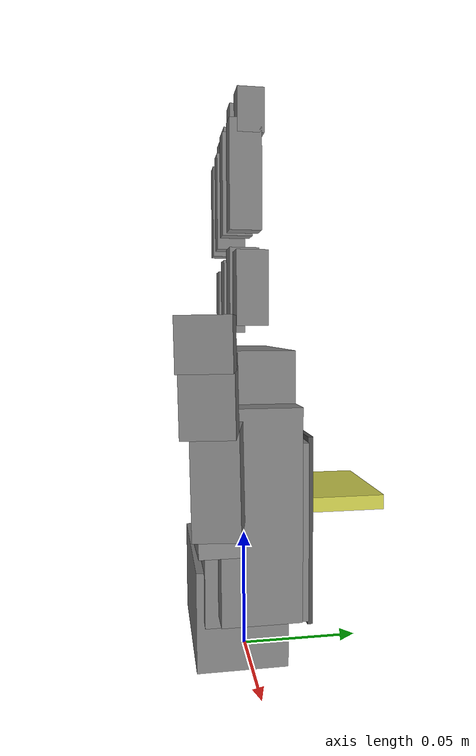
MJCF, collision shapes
<mujoco model="v2_scene_grasp_palmup">
  <!-- ================================================================
       V2 掌心朝上场景 (Palm Up)
       手指朝上(+Z)，掌心朝 +Y，方块放在掌心上方
       ================================================================ -->
  <size nconmax="80"/>
  <include file="right_hand_v2_palmup.xml"/>
  <include file="small_cube.xml"/>

  <statistic center="0 0.02 0.085" extent="0.4" meansize="0.01"/>

  <visual>
    <headlight diffuse=".8 .8 .8" ambient=".2 .2 .2" specular="1 1 1"/>
    <rgba force="1 0 0 1"/>
    <global azimuth="120" elevation="-20"/>
  </visual>

  <asset>
    <texture type="skybox" builtin="gradient" rgb1="1 1 1" rgb2="1 1 1" width="800" height="800"/>
    <texture type="2d" name="groundplane" builtin="checker" mark="edge"
             rgb1="1 1 1" rgb2="1 1 1" markrgb="0 0 0" width="300" height="300"/>
    <material name="groundplane" texture="groundplane" texuniform="true" texrepeat="5 5" reflectance="0"/>
  </asset>

  <worldbody>
    <camera name="side" pos="0.0 -0.5 0.2" xyaxes="1 0 0 0 0.5 0.8"/>
    <camera name="palm" pos="0.0 0.40 0.10" xyaxes="-1 0 0 0 0 1"/>
    <geom name="floor" pos="0 0 -0.25" size="0 0 0.01" type="plane"
          material="groundplane" contype="2" conaffinity="2"/>
    <!-- 支撑台: mocap body -->
    <body name="cube_support" mocap="true" pos="0 0.030 0.067">
      <geom name="cube_support_geom" type="box" size="0.025 0.025 0.003"
            rgba="0.8 0.8 0.3 0.3" contype="4" conaffinity="5"/>
    </body>
  </worldbody>

  <sensor>
    <framepos name="cube_position" objtype="body" objname="cube"/>
    <framequat name="cube_orientation" objtype="body" objname="cube"/>
    <framelinvel name="cube_linvel" objtype="body" objname="cube"/>
    <frameangvel name="cube_angvel" objtype="body" objname="cube"/>
    <framepos name="palm_position" objtype="site" objname="grasp_site"/>
    <framepos name="th_tip_position" objtype="site" objname="th_tip" reftype="site" refname="grasp_site"/>
    <framepos name="if_tip_position" objtype="site" objname="if_tip" reftype="site" refname="grasp_site"/>
    <framepos name="mf_tip_position" objtype="site" objname="mf_tip" reftype="site" refname="grasp_site"/>
    <framepos name="rf_tip_position" objtype="site" objname="rf_tip" reftype="site" refname="grasp_site"/>
    <framepos name="pf_tip_position" objtype="site" objname="pf_tip" reftype="site" refname="grasp_site"/>
  </sensor>

  <!-- keyframe: palmup 姿态
       grasp_site 世界坐标 ≈ (0, 0.020, 0.085)
       cube 放在掌上: (0, 0.030, 0.085)
       support: (0, 0.030, 0.067) -->
  <keyframe>
    <key name="home" qpos="0 0 0 0 0 0 0 0 0 0 0
    0.0 0.030 0.085 1 0 0 0" ctrl="
    0.0
    0.0
    0.0
    0.0
    0.0
    0.0" mpos="0 0.030 0.067" mquat="1 0 0 0"/>
  </keyframe>
</mujoco>

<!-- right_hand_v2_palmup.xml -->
<mujoco model="Lingxi_Hand_V2_Right_PalmUp">
  <compiler angle="radian" meshdir="/home/ll/SRTP/Aero-Hand/handinformation/URDF/右/qbr/meshes/"/>

  <option timestep="0.01" integrator="Euler" iterations="8" ls_iterations="10">
    <flag eulerdamp="disable"/>
  </option>

  <custom>
    <numeric data="80" name="max_contact_points"/>
    <numeric data="50" name="max_geom_pairs"/>
  </custom>

  <asset>
    <material name="black" rgba="0.2 0.2 0.2 1"/>
    <material name="gray" rgba="0.5 0.5 0.5 1"/>
    <material name="white" rgba="0.529 0.549 0.549 1"/>
    <material name="rubber" rgba="0.3 0.3 0.3 1"/>

    <mesh name="v2_palm" file="base_link.STL"/>
    <mesh name="v2_thumb_base" file="link1.STL"/>
    <mesh name="v2_thumb_mid" file="link2.STL"/>
    <mesh name="v2_thumb_tip" file="link3.STL"/>
    <mesh name="v2_index_proximal" file="link4.STL"/>
    <mesh name="v2_index_distal" file="link5.STL"/>
    <mesh name="v2_middle_proximal" file="link6.STL"/>
    <mesh name="v2_middle_distal" file="link7.STL"/>
    <mesh name="v2_ring_proximal" file="link8.STL"/>
    <mesh name="v2_ring_distal" file="link9.STL"/>
    <mesh name="v2_pinky_proximal" file="link10.STL"/>
    <mesh name="v2_pinky_distal" file="link11.STL"/>
  </asset>

  <default>
    <default class="v2_hand">
      <geom group="3" friction="1.5" solref="0.02 1.5" solimp="0.9 0.99 0.001"/>
      <!-- 默认 site 隐藏到 group 4 -->
      <site group="4"/>
      <default class="visual">
        <geom group="2" type="mesh" contype="0" conaffinity="0" density="0" material="white"/>
      </default>
      <joint damping="0.02" armature="0.001559127" frictionloss="0.02"/>
      <position kp="3.0"/>
      <default class="mcp">
        <joint range="0 1.3963" damping="0.1"/>
        <position ctrlrange="0 1.40"/>
      </default>
      <default class="pip">
        <joint range="0 1.2915" damping="0.05"/>
      </default>
      <default class="thumb_cmc">
        <joint range="0 1.3788" damping="0.1"/>
        <position ctrlrange="0 1.38"/>
      </default>
      <default class="thumb_flex">
        <joint range="0 0.5236" damping="0.05"/>
      </default>
      <default class="thumb_mcp">
        <joint range="0 0.7854" damping="0.05"/>
        <position ctrlrange="0 0.79"/>
      </default>
    </default>
  </default>

  <contact>
    <exclude body1="palm" body2="right_index_proximal"/>
    <exclude body1="palm" body2="right_middle_proximal"/>
    <exclude body1="palm" body2="right_ring_proximal"/>
    <exclude body1="palm" body2="right_pinky_proximal"/>
    <exclude body1="palm" body2="right_thumb_base"/>
    <exclude body1="v2_mount" body2="right_index_proximal"/>
    <exclude body1="v2_mount" body2="right_middle_proximal"/>
    <exclude body1="v2_mount" body2="right_ring_proximal"/>
    <exclude body1="v2_mount" body2="right_pinky_proximal"/>
    <exclude body1="v2_mount" body2="right_thumb_base"/>
    <exclude body1="right_index_proximal" body2="right_index_distal"/>
    <exclude body1="right_middle_proximal" body2="right_middle_distal"/>
    <exclude body1="right_ring_proximal" body2="right_ring_distal"/>
    <exclude body1="right_pinky_proximal" body2="right_pinky_distal"/>
    <exclude body1="right_thumb_base" body2="right_thumb_mid"/>
    <exclude body1="right_thumb_mid" body2="right_thumb_tip"/>
  </contact>

  <worldbody>
    <!-- Palmup 挂载: euler="1.5708 0 0" = Rx(90°)
         URDF Y(手指)→世界 Z, URDF X(侧向)→世界 X, URDF Z(掌深)→世界 -Y -->
    <body name="v2_mount" pos="0 0 0" euler="1.5708 0 0" childclass="v2_hand">
      <body name="palm" pos="0 0 0">
        <geom type="mesh" mesh="v2_palm" class="visual"/>
        <geom name="palm_col_main" type="box" size="0.040 0.035 0.020" pos="0 0.060 0"/>
        <geom name="palm_col_top" type="box" size="0.038 0.015 0.015" pos="0 0.115 0"/>
        <geom name="palm_col_bot" type="box" size="0.035 0.020 0.018" pos="0 0.025 0.005"/>
        <geom name="palm_col_left" type="box" size="0.010 0.040 0.015" pos="0.042 0.070 0"/>
        <geom name="palm_col_right" type="box" size="0.010 0.040 0.015" pos="-0.042 0.070 0"/>
        <geom name="palm_rubber" type="box" size="0.038 0.037 0.001" pos="0 0.060 -0.021"
              friction="2.0 0.05 0.0002" material="rubber"/>
        <site name="grasp_site" pos="0 0.085 -0.020" group="4"/>

        <!-- INDEX -->
        <body name="right_index_proximal" pos="0.034276 0.1374 0.001">
          <inertial pos="-0.003657 0.0162 0.000274" mass="0.0686" diaginertia="7.49e-06 7.33e-06 2.82e-06"/>
          <joint name="right_index_mcp" axis="1 0 0" class="mcp"/>
          <geom type="mesh" mesh="v2_index_proximal" class="visual"/>
          <geom name="if_prox_col" type="box" size="0.006 0.014 0.006" pos="-0.004 0.016 0"/>
          <body name="right_index_distal" pos="0.00084336 0.031988 -0.0026473">
            <inertial pos="-0.00450 0.0246 0.00927" mass="0.0755" diaginertia="1.58e-05 1.57e-05 2.47e-06"/>
            <joint name="right_index_pip" axis="1 0 0" class="pip"/>
            <geom type="mesh" mesh="v2_index_distal" class="visual"/>
            <geom name="if_dist_col" type="box" size="0.005 0.020 0.006" pos="-0.004 0.025 0.005"/>
            <geom name="if_tip_col" type="box" size="0.005 0.008 0.005" pos="-0.004 0.048 0.003"/>
            <site name="if_tip" pos="-0.004 0.052 0.005" group="4"/>
            <site name="if_tip_t00" pos="-0.007 0.042 0.005" size="0.003"/>
            <site name="if_tip_t01" pos="-0.005 0.042 0.005" size="0.003"/>
            <site name="if_tip_t02" pos="-0.003 0.042 0.005" size="0.003"/>
            <site name="if_tip_t03" pos="-0.001 0.042 0.005" size="0.003"/>
            <site name="if_tip_t04" pos="-0.007 0.045 0.005" size="0.003"/>
            <site name="if_tip_t05" pos="-0.005 0.045 0.005" size="0.003"/>
            <site name="if_tip_t06" pos="-0.003 0.045 0.005" size="0.003"/>
            <site name="if_tip_t07" pos="-0.001 0.045 0.005" size="0.003"/>
            <site name="if_tip_t08" pos="-0.007 0.048 0.005" size="0.003"/>
            <site name="if_tip_t09" pos="-0.005 0.048 0.005" size="0.003"/>
            <site name="if_tip_t10" pos="-0.003 0.048 0.005" size="0.003"/>
            <site name="if_tip_t11" pos="-0.001 0.048 0.005" size="0.003"/>
            <site name="if_tip_t12" pos="-0.007 0.051 0.005" size="0.003"/>
            <site name="if_tip_t13" pos="-0.005 0.051 0.005" size="0.003"/>
            <site name="if_tip_t14" pos="-0.003 0.051 0.005" size="0.003"/>
            <site name="if_tip_t15" pos="-0.001 0.051 0.005" size="0.003"/>
          </body>
        </body>

        <!-- MIDDLE -->
        <body name="right_middle_proximal" pos="0.012276 0.14055 0.001">
          <inertial pos="-0.003657 0.0162 0.000274" mass="0.0686" diaginertia="7.49e-06 7.33e-06 2.82e-06"/>
          <joint name="right_middle_mcp" axis="1 0 0" class="mcp"/>
          <geom type="mesh" mesh="v2_middle_proximal" class="visual"/>
          <geom name="mf_prox_col" type="box" size="0.006 0.014 0.006" pos="-0.004 0.016 0"/>
          <body name="right_middle_distal" pos="0 0.02968 -0.0024563">
            <inertial pos="-0.00366 0.0269 0.00908" mass="0.0755" diaginertia="1.58e-05 1.57e-05 2.47e-06"/>
            <joint name="right_middle_pip" axis="1 0 0" class="pip"/>
            <geom type="mesh" mesh="v2_middle_distal" class="visual"/>
            <geom name="mf_dist_col" type="box" size="0.005 0.020 0.006" pos="-0.004 0.025 0.005"/>
            <geom name="mf_tip_col" type="box" size="0.005 0.008 0.005" pos="-0.004 0.048 0.003"/>
            <site name="mf_tip" pos="-0.004 0.052 0.005" group="4"/>
            <site name="mf_tip_t00" pos="-0.007 0.042 0.005" size="0.003"/>
            <site name="mf_tip_t01" pos="-0.005 0.042 0.005" size="0.003"/>
            <site name="mf_tip_t02" pos="-0.003 0.042 0.005" size="0.003"/>
            <site name="mf_tip_t03" pos="-0.001 0.042 0.005" size="0.003"/>
            <site name="mf_tip_t04" pos="-0.007 0.045 0.005" size="0.003"/>
            <site name="mf_tip_t05" pos="-0.005 0.045 0.005" size="0.003"/>
            <site name="mf_tip_t06" pos="-0.003 0.045 0.005" size="0.003"/>
            <site name="mf_tip_t07" pos="-0.001 0.045 0.005" size="0.003"/>
            <site name="mf_tip_t08" pos="-0.007 0.048 0.005" size="0.003"/>
            <site name="mf_tip_t09" pos="-0.005 0.048 0.005" size="0.003"/>
            <site name="mf_tip_t10" pos="-0.003 0.048 0.005" size="0.003"/>
            <site name="mf_tip_t11" pos="-0.001 0.048 0.005" size="0.003"/>
            <site name="mf_tip_t12" pos="-0.007 0.051 0.005" size="0.003"/>
            <site name="mf_tip_t13" pos="-0.005 0.051 0.005" size="0.003"/>
            <site name="mf_tip_t14" pos="-0.003 0.051 0.005" size="0.003"/>
            <site name="mf_tip_t15" pos="-0.001 0.051 0.005" size="0.003"/>
          </body>
        </body>

        <!-- RING -->
        <body name="right_ring_proximal" pos="-0.009724 0.1374 0.001">
          <inertial pos="-0.003657 0.0162 0.000274" mass="0.0686" diaginertia="7.49e-06 7.33e-06 2.82e-06"/>
          <joint name="right_ring_mcp" axis="1 0 0" class="mcp"/>
          <geom type="mesh" mesh="v2_ring_proximal" class="visual"/>
          <geom name="rf_prox_col" type="box" size="0.006 0.014 0.006" pos="-0.004 0.016 0"/>
          <body name="right_ring_distal" pos="0 0.02968 -0.0024563">
            <inertial pos="-0.00366 0.0269 0.00908" mass="0.0755" diaginertia="1.58e-05 1.57e-05 2.47e-06"/>
            <joint name="right_ring_pip" axis="1 0 0" class="pip"/>
            <geom type="mesh" mesh="v2_ring_distal" class="visual"/>
            <geom name="rf_dist_col" type="box" size="0.005 0.020 0.006" pos="-0.004 0.025 0.005"/>
            <geom name="rf_tip_col" type="box" size="0.005 0.008 0.005" pos="-0.004 0.048 0.003"/>
            <site name="rf_tip" pos="-0.004 0.052 0.005" group="4"/>
            <site name="rf_tip_t00" pos="-0.007 0.042 0.005" size="0.003"/>
            <site name="rf_tip_t01" pos="-0.005 0.042 0.005" size="0.003"/>
            <site name="rf_tip_t02" pos="-0.003 0.042 0.005" size="0.003"/>
            <site name="rf_tip_t03" pos="-0.001 0.042 0.005" size="0.003"/>
            <site name="rf_tip_t04" pos="-0.007 0.045 0.005" size="0.003"/>
            <site name="rf_tip_t05" pos="-0.005 0.045 0.005" size="0.003"/>
            <site name="rf_tip_t06" pos="-0.003 0.045 0.005" size="0.003"/>
            <site name="rf_tip_t07" pos="-0.001 0.045 0.005" size="0.003"/>
            <site name="rf_tip_t08" pos="-0.007 0.048 0.005" size="0.003"/>
            <site name="rf_tip_t09" pos="-0.005 0.048 0.005" size="0.003"/>
            <site name="rf_tip_t10" pos="-0.003 0.048 0.005" size="0.003"/>
            <site name="rf_tip_t11" pos="-0.001 0.048 0.005" size="0.003"/>
            <site name="rf_tip_t12" pos="-0.007 0.051 0.005" size="0.003"/>
            <site name="rf_tip_t13" pos="-0.005 0.051 0.005" size="0.003"/>
            <site name="rf_tip_t14" pos="-0.003 0.051 0.005" size="0.003"/>
            <site name="rf_tip_t15" pos="-0.001 0.051 0.005" size="0.003"/>
          </body>
        </body>

        <!-- PINKY -->
        <body name="right_pinky_proximal" pos="-0.031724 0.13417 0.001">
          <inertial pos="-0.003657 0.0162 0.000274" mass="0.0686" diaginertia="7.49e-06 7.33e-06 2.82e-06"/>
          <joint name="right_pinky_mcp" axis="1 0 0" class="mcp"/>
          <geom type="mesh" mesh="v2_pinky_proximal" class="visual"/>
          <geom name="pf_prox_col" type="box" size="0.006 0.014 0.006" pos="-0.004 0.016 0"/>
          <body name="right_pinky_distal" pos="0.00084336 0.031988 -0.0026473">
            <inertial pos="-0.00450 0.0246 0.00927" mass="0.0755" diaginertia="1.58e-05 1.57e-05 2.47e-06"/>
            <joint name="right_pinky_pip" axis="1 0 0" class="pip"/>
            <geom type="mesh" mesh="v2_pinky_distal" class="visual"/>
            <geom name="pf_dist_col" type="box" size="0.005 0.020 0.006" pos="-0.004 0.025 0.005"/>
            <geom name="pf_tip_col" type="box" size="0.005 0.008 0.005" pos="-0.004 0.048 0.003"/>
            <site name="pf_tip" pos="-0.004 0.052 0.005" group="4"/>
            <site name="pf_tip_t00" pos="-0.007 0.042 0.005" size="0.003"/>
            <site name="pf_tip_t01" pos="-0.005 0.042 0.005" size="0.003"/>
            <site name="pf_tip_t02" pos="-0.003 0.042 0.005" size="0.003"/>
            <site name="pf_tip_t03" pos="-0.001 0.042 0.005" size="0.003"/>
            <site name="pf_tip_t04" pos="-0.007 0.045 0.005" size="0.003"/>
            <site name="pf_tip_t05" pos="-0.005 0.045 0.005" size="0.003"/>
            <site name="pf_tip_t06" pos="-0.003 0.045 0.005" size="0.003"/>
            <site name="pf_tip_t07" pos="-0.001 0.045 0.005" size="0.003"/>
            <site name="pf_tip_t08" pos="-0.007 0.048 0.005" size="0.003"/>
            <site name="pf_tip_t09" pos="-0.005 0.048 0.005" size="0.003"/>
            <site name="pf_tip_t10" pos="-0.003 0.048 0.005" size="0.003"/>
            <site name="pf_tip_t11" pos="-0.001 0.048 0.005" size="0.003"/>
            <site name="pf_tip_t12" pos="-0.007 0.051 0.005" size="0.003"/>
            <site name="pf_tip_t13" pos="-0.005 0.051 0.005" size="0.003"/>
            <site name="pf_tip_t14" pos="-0.003 0.051 0.005" size="0.003"/>
            <site name="pf_tip_t15" pos="-0.001 0.051 0.005" size="0.003"/>
          </body>
        </body>

        <!-- THUMB -->
        <body name="right_thumb_base" pos="0.028693 0.069894 0.010325"
              quat="0.999048 0 0 0.043619">
          <inertial pos="0.013775 -0.009814 0.002084" mass="0.08488" diaginertia="1.03e-05 9.49e-06 5.67e-06"/>
          <joint name="right_thumb_cmc_abd" axis="0 -1 0" class="thumb_cmc"/>
          <geom type="mesh" mesh="v2_thumb_base" class="visual"/>
          <geom name="th_base_col" type="box" size="0.012 0.010 0.008" pos="0.014 -0.005 0.005"/>
          <body name="right_thumb_mid" pos="0.02679 -0.0045 0.0045976"
                quat="0.641137 -0.027549 -0.766225 -0.032924">
            <inertial pos="0 0.01832 -0.01287" mass="0.18907" diaginertia="4.62e-05 4.25e-05 1.60e-05"/>
            <joint name="right_thumb_cmc_flex" axis="1 0 0" class="thumb_flex"/>
            <geom type="mesh" mesh="v2_thumb_mid" class="visual"/>
            <geom name="th_mid_col" type="box" size="0.008 0.018 0.012" pos="0 0.020 -0.010"/>
            <body name="right_thumb_tip" pos="0.0055478 0.0413 -0.024172">
              <inertial pos="-0.005551 0.005391 -0.014448" mass="0.07660" diaginertia="8.30e-06 8.00e-06 4.06e-06"/>
              <joint name="right_thumb_mcp" axis="1 0 0" class="thumb_mcp"/>
              <geom type="mesh" mesh="v2_thumb_tip" class="visual"/>
              <geom name="th_tip_col_1" type="box" size="0.008 0.012 0.008" pos="-0.006 0.010 -0.015"/>
              <geom name="th_tip_col_2" type="box" size="0.008 0.008 0.008" pos="-0.006 0.025 -0.020"/>
              <site name="th_tip" pos="-0.006 0.028 -0.020" group="4"/>
              <site name="th_tip_t00" pos="-0.010 0.018 -0.020" size="0.003"/>
              <site name="th_tip_t01" pos="-0.007 0.018 -0.020" size="0.003"/>
              <site name="th_tip_t02" pos="-0.004 0.018 -0.020" size="0.003"/>
              <site name="th_tip_t03" pos="-0.001 0.018 -0.020" size="0.003"/>
              <site name="th_tip_t04" pos="-0.010 0.022 -0.020" size="0.003"/>
              <site name="th_tip_t05" pos="-0.007 0.022 -0.020" size="0.003"/>
              <site name="th_tip_t06" pos="-0.004 0.022 -0.020" size="0.003"/>
              <site name="th_tip_t07" pos="-0.001 0.022 -0.020" size="0.003"/>
              <site name="th_tip_t08" pos="-0.010 0.026 -0.020" size="0.003"/>
              <site name="th_tip_t09" pos="-0.007 0.026 -0.020" size="0.003"/>
              <site name="th_tip_t10" pos="-0.004 0.026 -0.020" size="0.003"/>
              <site name="th_tip_t11" pos="-0.001 0.026 -0.020" size="0.003"/>
              <site name="th_tip_t12" pos="-0.010 0.030 -0.020" size="0.003"/>
              <site name="th_tip_t13" pos="-0.007 0.030 -0.020" size="0.003"/>
              <site name="th_tip_t14" pos="-0.004 0.030 -0.020" size="0.003"/>
              <site name="th_tip_t15" pos="-0.001 0.030 -0.020" size="0.003"/>
            </body>
          </body>
        </body>
      </body>
    </body>
  </worldbody>

  <actuator>
    <position name="hw_thumb_rot" joint="right_thumb_cmc_abd" class="thumb_cmc" kp="5"/>
    <position name="hw_thumb_flex" joint="right_thumb_mcp" class="thumb_mcp" kp="3"/>
    <position name="hw_index" joint="right_index_mcp" class="mcp" kp="3"/>
    <position name="hw_middle" joint="right_middle_mcp" class="mcp" kp="3"/>
    <position name="hw_ring" joint="right_ring_mcp" class="mcp" kp="3"/>
    <position name="hw_pinky" joint="right_pinky_mcp" class="mcp" kp="3"/>
  </actuator>

  <sensor>
    <jointpos name="hw_pos_thumb_rot" joint="right_thumb_cmc_abd"/>
    <jointpos name="hw_pos_thumb_flex" joint="right_thumb_mcp"/>
    <jointpos name="hw_pos_index" joint="right_index_mcp"/>
    <jointpos name="hw_pos_middle" joint="right_middle_mcp"/>
    <jointpos name="hw_pos_ring" joint="right_ring_mcp"/>
    <jointpos name="hw_pos_pinky" joint="right_pinky_mcp"/>

    <touch name="hw_tip_frc_thumb_00" site="th_tip_t00"/>
    <touch name="hw_tip_frc_thumb_01" site="th_tip_t01"/>
    <touch name="hw_tip_frc_thumb_02" site="th_tip_t02"/>
    <touch name="hw_tip_frc_thumb_03" site="th_tip_t03"/>
    <touch name="hw_tip_frc_thumb_04" site="th_tip_t04"/>
    <touch name="hw_tip_frc_thumb_05" site="th_tip_t05"/>
    <touch name="hw_tip_frc_thumb_06" site="th_tip_t06"/>
    <touch name="hw_tip_frc_thumb_07" site="th_tip_t07"/>
    <touch name="hw_tip_frc_thumb_08" site="th_tip_t08"/>
    <touch name="hw_tip_frc_thumb_09" site="th_tip_t09"/>
    <touch name="hw_tip_frc_thumb_10" site="th_tip_t10"/>
    <touch name="hw_tip_frc_thumb_11" site="th_tip_t11"/>
    <touch name="hw_tip_frc_thumb_12" site="th_tip_t12"/>
    <touch name="hw_tip_frc_thumb_13" site="th_tip_t13"/>
    <touch name="hw_tip_frc_thumb_14" site="th_tip_t14"/>
    <touch name="hw_tip_frc_thumb_15" site="th_tip_t15"/>
    <touch name="hw_tip_frc_index_00" site="if_tip_t00"/>
    <touch name="hw_tip_frc_index_01" site="if_tip_t01"/>
    <touch name="hw_tip_frc_index_02" site="if_tip_t02"/>
    <touch name="hw_tip_frc_index_03" site="if_tip_t03"/>
    <touch name="hw_tip_frc_index_04" site="if_tip_t04"/>
    <touch name="hw_tip_frc_index_05" site="if_tip_t05"/>
    <touch name="hw_tip_frc_index_06" site="if_tip_t06"/>
    <touch name="hw_tip_frc_index_07" site="if_tip_t07"/>
    <touch name="hw_tip_frc_index_08" site="if_tip_t08"/>
    <touch name="hw_tip_frc_index_09" site="if_tip_t09"/>
    <touch name="hw_tip_frc_index_10" site="if_tip_t10"/>
    <touch name="hw_tip_frc_index_11" site="if_tip_t11"/>
    <touch name="hw_tip_frc_index_12" site="if_tip_t12"/>
    <touch name="hw_tip_frc_index_13" site="if_tip_t13"/>
    <touch name="hw_tip_frc_index_14" site="if_tip_t14"/>
    <touch name="hw_tip_frc_index_15" site="if_tip_t15"/>
    <touch name="hw_tip_frc_middle_00" site="mf_tip_t00"/>
    <touch name="hw_tip_frc_middle_01" site="mf_tip_t01"/>
    <touch name="hw_tip_frc_middle_02" site="mf_tip_t02"/>
    <touch name="hw_tip_frc_middle_03" site="mf_tip_t03"/>
    <touch name="hw_tip_frc_middle_04" site="mf_tip_t04"/>
    <touch name="hw_tip_frc_middle_05" site="mf_tip_t05"/>
    <touch name="hw_tip_frc_middle_06" site="mf_tip_t06"/>
    <touch name="hw_tip_frc_middle_07" site="mf_tip_t07"/>
    <touch name="hw_tip_frc_middle_08" site="mf_tip_t08"/>
    <touch name="hw_tip_frc_middle_09" site="mf_tip_t09"/>
    <touch name="hw_tip_frc_middle_10" site="mf_tip_t10"/>
    <touch name="hw_tip_frc_middle_11" site="mf_tip_t11"/>
    <touch name="hw_tip_frc_middle_12" site="mf_tip_t12"/>
    <touch name="hw_tip_frc_middle_13" site="mf_tip_t13"/>
    <touch name="hw_tip_frc_middle_14" site="mf_tip_t14"/>
    <touch name="hw_tip_frc_middle_15" site="mf_tip_t15"/>
    <touch name="hw_tip_frc_ring_00" site="rf_tip_t00"/>
    <touch name="hw_tip_frc_ring_01" site="rf_tip_t01"/>
    <touch name="hw_tip_frc_ring_02" site="rf_tip_t02"/>
    <touch name="hw_tip_frc_ring_03" site="rf_tip_t03"/>
    <touch name="hw_tip_frc_ring_04" site="rf_tip_t04"/>
    <touch name="hw_tip_frc_ring_05" site="rf_tip_t05"/>
    <touch name="hw_tip_frc_ring_06" site="rf_tip_t06"/>
    <touch name="hw_tip_frc_ring_07" site="rf_tip_t07"/>
    <touch name="hw_tip_frc_ring_08" site="rf_tip_t08"/>
    <touch name="hw_tip_frc_ring_09" site="rf_tip_t09"/>
    <touch name="hw_tip_frc_ring_10" site="rf_tip_t10"/>
    <touch name="hw_tip_frc_ring_11" site="rf_tip_t11"/>
    <touch name="hw_tip_frc_ring_12" site="rf_tip_t12"/>
    <touch name="hw_tip_frc_ring_13" site="rf_tip_t13"/>
    <touch name="hw_tip_frc_ring_14" site="rf_tip_t14"/>
    <touch name="hw_tip_frc_ring_15" site="rf_tip_t15"/>
    <touch name="hw_tip_frc_pinky_00" site="pf_tip_t00"/>
    <touch name="hw_tip_frc_pinky_01" site="pf_tip_t01"/>
    <touch name="hw_tip_frc_pinky_02" site="pf_tip_t02"/>
    <touch name="hw_tip_frc_pinky_03" site="pf_tip_t03"/>
    <touch name="hw_tip_frc_pinky_04" site="pf_tip_t04"/>
    <touch name="hw_tip_frc_pinky_05" site="pf_tip_t05"/>
    <touch name="hw_tip_frc_pinky_06" site="pf_tip_t06"/>
    <touch name="hw_tip_frc_pinky_07" site="pf_tip_t07"/>
    <touch name="hw_tip_frc_pinky_08" site="pf_tip_t08"/>
    <touch name="hw_tip_frc_pinky_09" site="pf_tip_t09"/>
    <touch name="hw_tip_frc_pinky_10" site="pf_tip_t10"/>
    <touch name="hw_tip_frc_pinky_11" site="pf_tip_t11"/>
    <touch name="hw_tip_frc_pinky_12" site="pf_tip_t12"/>
    <touch name="hw_tip_frc_pinky_13" site="pf_tip_t13"/>
    <touch name="hw_tip_frc_pinky_14" site="pf_tip_t14"/>
    <touch name="hw_tip_frc_pinky_15" site="pf_tip_t15"/>
  </sensor>

  <equality>
    <joint joint1="right_index_pip" joint2="right_index_mcp"
           polycoef="0 0.925 0 0 0" solref="0.005 1" solimp="0.95 0.99 0.001"/>
    <joint joint1="right_middle_pip" joint2="right_middle_mcp"
           polycoef="0 0.925 0 0 0" solref="0.005 1" solimp="0.95 0.99 0.001"/>
    <joint joint1="right_ring_pip" joint2="right_ring_mcp"
           polycoef="0 0.925 0 0 0" solref="0.005 1" solimp="0.95 0.99 0.001"/>
    <joint joint1="right_pinky_pip" joint2="right_pinky_mcp"
           polycoef="0 0.925 0 0 0" solref="0.005 1" solimp="0.95 0.99 0.001"/>
    <joint joint1="right_thumb_cmc_flex" joint2="right_thumb_cmc_abd"
           polycoef="0 0.38 0 0 0" solref="0.005 1" solimp="0.95 0.99 0.001"/>
  </equality>

</mujoco>

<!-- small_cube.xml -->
<mujoco>
  <!-- ================================================================
       物块参数文件（P-stage 和 V-stage 共用）
       ================================================================ -->
  <default>
    <default class="cube">
      <!-- C14: friction 2.0→1.5 (moderate), mass 20g→10g (easier hold) -->
      <!-- C20穿模修复: 添加solref/solimp使方块接触更硬 -->
      <geom friction="1.5 0.05" conaffinity="7" condim="3" solref="0.005 1.0" solimp="0.97 0.999 0.0001"/>
    </default>
  </default>

  <worldbody>
    <!-- 【物块 body】
         pos：默认初始位置（被 keyframe 或 Python config 中 cube_pos 覆盖，此值不生效）
         quat：初始姿态，1 0 0 0 = 无旋转 -->
    <body name="cube" pos="-0.066 0.0 0.085" quat="1 0 0 0" childclass="cube">
      <!-- freejoint：使物块有 6-DOF 自由运动（位置+姿态，共 7 qpos）-->
      <freejoint name="cube_freejoint"/>
      <geom name="cube" type="box" size=".0125 .0125 .0125" mass=".020" group="1" rgba="0.2 0.6 1.0 1"/>
      <site name="cube_center" pos="0 0 0" group="4"/>
    </body>
  </worldbody>
</mujoco>
